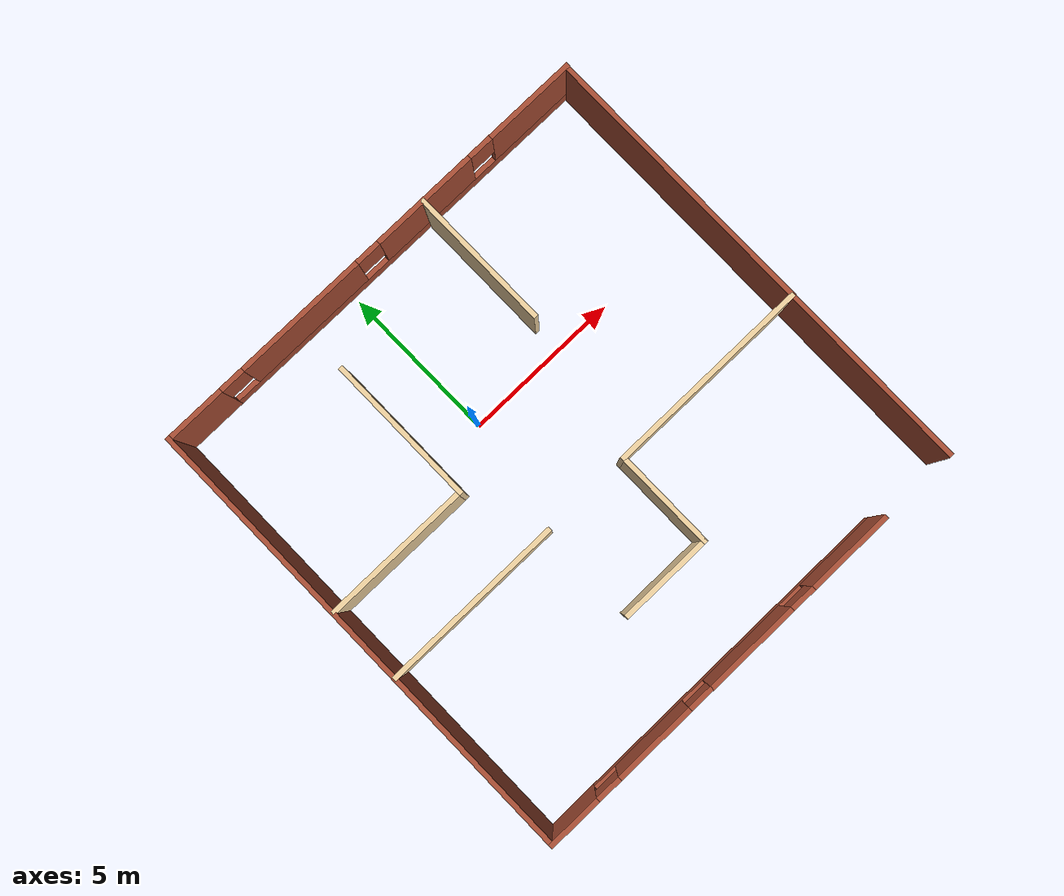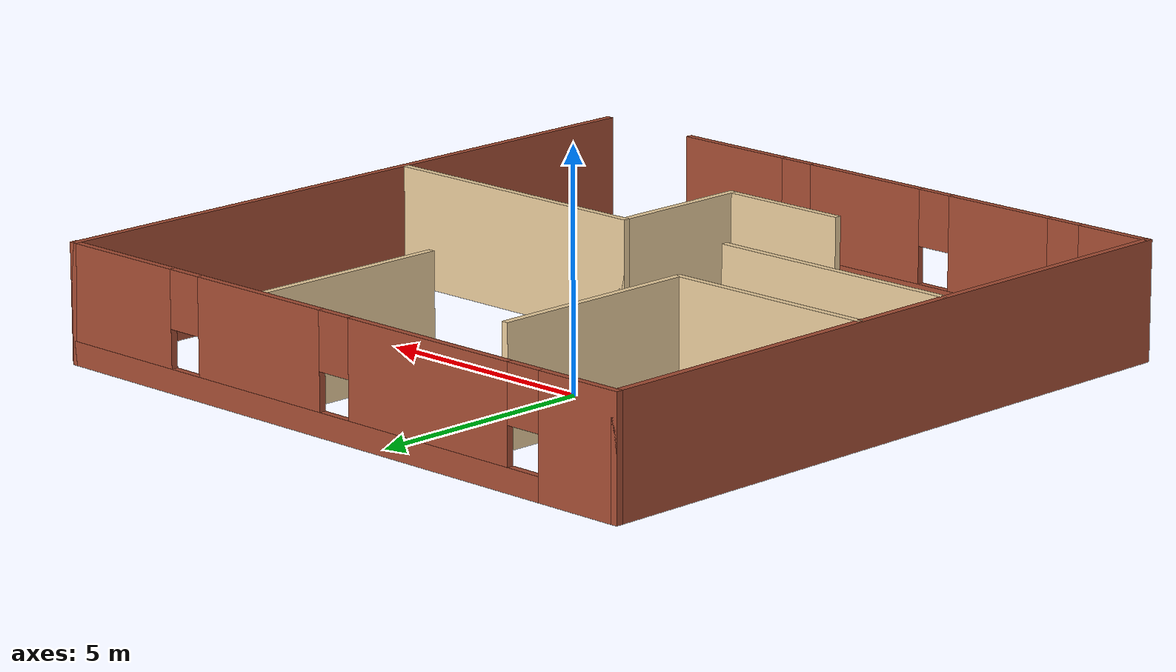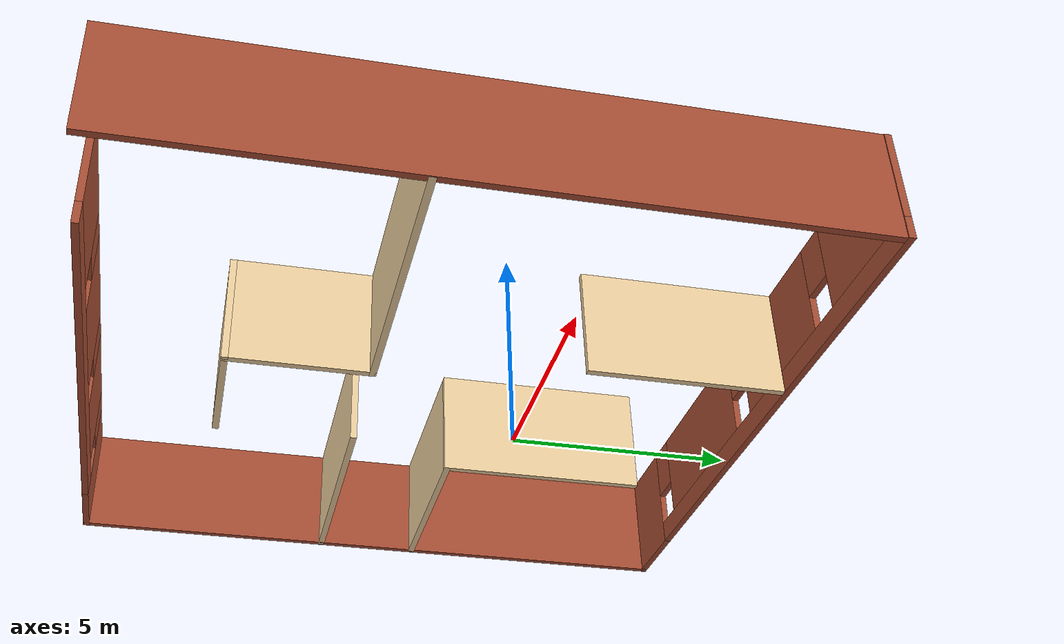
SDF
<?xml version='1.0'?>
<sdf version='1.7'>
  <model name='gMaze9'>
    <pose>1.11307 -2.1707 0 0 -0 0</pose>
    <link name='Wall_0'>
      <pose>0 7.425 0 0 -0 0</pose>
      <visual name='Wall_0_Visual_0'>
        <pose>-6.50945 0 1.25 0 -0 0</pose>
        <geometry>
          <box>
            <size>1.98109 0.15 2.5</size>
          </box>
        </geometry>
        <material>
          <script>
            <uri>file://media/materials/scripts/gazebo.material</uri>
            <name>Gazebo/Bricks</name>
          </script>
          <ambient>1 1 1 1</ambient>
        </material>
        <meta>
          <layer>0</layer>
        </meta>
      </visual>
      <collision name='Wall_0_Collision_0'>
        <geometry>
          <box>
            <size>1.98109 0.15 2.5</size>
          </box>
        </geometry>
        <pose>-6.50945 0 1.25 0 -0 0</pose>
      </collision>
      <visual name='Wall_0_Visual_1'>
        <pose>0.990545 0 0.25 0 -0 0</pose>
        <geometry>
          <box>
            <size>13.0189 0.15 0.5</size>
          </box>
        </geometry>
        <material>
          <script>
            <uri>file://media/materials/scripts/gazebo.material</uri>
            <name>Gazebo/Bricks</name>
          </script>
          <ambient>1 1 1 1</ambient>
        </material>
        <meta>
          <layer>0</layer>
        </meta>
      </visual>
      <collision name='Wall_0_Collision_1'>
        <geometry>
          <box>
            <size>13.0189 0.15 0.5</size>
          </box>
        </geometry>
        <pose>0.990545 0 0.25 0 -0 0</pose>
      </collision>
      <visual name='Wall_0_Visual_2'>
        <pose>-2.60363 0 1.5 0 -0 0</pose>
        <geometry>
          <box>
            <size>4.23056 0.15 2</size>
          </box>
        </geometry>
        <material>
          <script>
            <uri>file://media/materials/scripts/gazebo.material</uri>
            <name>Gazebo/Bricks</name>
          </script>
          <ambient>1 1 1 1</ambient>
        </material>
        <meta>
          <layer>0</layer>
        </meta>
      </visual>
      <collision name='Wall_0_Collision_2'>
        <geometry>
          <box>
            <size>4.23056 0.15 2</size>
          </box>
        </geometry>
        <pose>-2.60363 0 1.5 0 -0 0</pose>
      </collision>
      <visual name='Wall_0_Visual_3'>
        <pose>2.02238 0 1.5 0 -0 0</pose>
        <geometry>
          <box>
            <size>3.42145 0.15 2</size>
          </box>
        </geometry>
        <material>
          <script>
            <uri>file://media/materials/scripts/gazebo.material</uri>
            <name>Gazebo/Bricks</name>
          </script>
          <ambient>1 1 1 1</ambient>
        </material>
        <meta>
          <layer>0</layer>
        </meta>
      </visual>
      <collision name='Wall_0_Collision_3'>
        <geometry>
          <box>
            <size>3.42145 0.15 2</size>
          </box>
        </geometry>
        <pose>2.02238 0 1.5 0 -0 0</pose>
      </collision>
      <visual name='Wall_0_Visual_4'>
        <pose>6.01655 0 1.5 0 -0 0</pose>
        <geometry>
          <box>
            <size>2.9669 0.15 2</size>
          </box>
        </geometry>
        <material>
          <script>
            <uri>file://media/materials/scripts/gazebo.material</uri>
            <name>Gazebo/Bricks</name>
          </script>
          <ambient>1 1 1 1</ambient>
        </material>
        <meta>
          <layer>0</layer>
        </meta>
      </visual>
      <collision name='Wall_0_Collision_4'>
        <geometry>
          <box>
            <size>2.9669 0.15 2</size>
          </box>
        </geometry>
        <pose>6.01655 0 1.5 0 -0 0</pose>
      </collision>
      <visual name='Wall_0_Visual_5'>
        <pose>-5.11891 0 1.9 0 -0 0</pose>
        <geometry>
          <box>
            <size>0.8 0.15 1.2</size>
          </box>
        </geometry>
        <material>
          <script>
            <uri>file://media/materials/scripts/gazebo.material</uri>
            <name>Gazebo/Bricks</name>
          </script>
          <ambient>1 1 1 1</ambient>
        </material>
        <meta>
          <layer>0</layer>
        </meta>
      </visual>
      <collision name='Wall_0_Collision_5'>
        <geometry>
          <box>
            <size>0.8 0.15 1.2</size>
          </box>
        </geometry>
        <pose>-5.11891 0 1.9 0 -0 0</pose>
      </collision>
      <visual name='Wall_0_Visual_6'>
        <pose>-0.088347 0 1.9 0 -0 0</pose>
        <geometry>
          <box>
            <size>0.8 0.15 1.2</size>
          </box>
        </geometry>
        <material>
          <script>
            <uri>file://media/materials/scripts/gazebo.material</uri>
            <name>Gazebo/Bricks</name>
          </script>
          <ambient>1 1 1 1</ambient>
        </material>
        <meta>
          <layer>0</layer>
        </meta>
      </visual>
      <collision name='Wall_0_Collision_6'>
        <geometry>
          <box>
            <size>0.8 0.15 1.2</size>
          </box>
        </geometry>
        <pose>-0.088347 0 1.9 0 -0 0</pose>
      </collision>
      <visual name='Wall_0_Visual_7'>
        <pose>4.1331 0 1.9 0 -0 0</pose>
        <geometry>
          <box>
            <size>0.8 0.15 1.2</size>
          </box>
        </geometry>
        <material>
          <script>
            <uri>file://media/materials/scripts/gazebo.material</uri>
            <name>Gazebo/Bricks</name>
          </script>
          <ambient>1 1 1 1</ambient>
        </material>
        <meta>
          <layer>0</layer>
        </meta>
      </visual>
      <collision name='Wall_0_Collision_7'>
        <geometry>
          <box>
            <size>0.8 0.15 1.2</size>
          </box>
        </geometry>
        <pose>4.1331 0 1.9 0 -0 0</pose>
      </collision>
    </link>
    <link name='Wall_1'>
      <collision name='Wall_1_Collision'>
        <geometry>
          <box>
            <size>15 0.15 2.5</size>
          </box>
        </geometry>
        <pose>0 0 1.25 0 -0 0</pose>
      </collision>
      <visual name='Wall_1_Visual'>
        <pose>0 0 1.25 0 -0 0</pose>
        <geometry>
          <box>
            <size>15 0.15 2.5</size>
          </box>
        </geometry>
        <material>
          <script>
            <uri>file://media/materials/scripts/gazebo.material</uri>
            <name>Gazebo/Bricks</name>
          </script>
          <ambient>1 1 1 1</ambient>
        </material>
        <meta>
          <layer>0</layer>
        </meta>
      </visual>
      <pose>7.40489 -0 0 0 -0 -1.5708</pose>
    </link>
    <link name='Wall_3'>
      <collision name='Wall_3_Collision'>
        <geometry>
          <box>
            <size>15 0.15 2.5</size>
          </box>
        </geometry>
        <pose>0 0 1.25 0 -0 0</pose>
      </collision>
      <visual name='Wall_3_Visual'>
        <pose>0 0 1.25 0 -0 0</pose>
        <geometry>
          <box>
            <size>15 0.15 2.5</size>
          </box>
        </geometry>
        <material>
          <script>
            <uri>file://media/materials/scripts/gazebo.material</uri>
            <name>Gazebo/Bricks</name>
          </script>
          <ambient>1 1 1 1</ambient>
        </material>
        <meta>
          <layer>0</layer>
        </meta>
      </visual>
      <pose>-7.425 -0 0 0 -0 -1.5708</pose>
    </link>
    <link name='Wall_4'>
      <pose>-1.25 -7.425 0 0 -0 0</pose>
      <visual name='Wall_4_Visual_0'>
        <pose>-5.37558 0 1.25 0 -0 0</pose>
        <geometry>
          <box>
            <size>1.74884 0.15 2.5</size>
          </box>
        </geometry>
        <material>
          <script>
            <uri>file://media/materials/scripts/gazebo.material</uri>
            <name>Gazebo/Bricks</name>
          </script>
          <ambient>1 1 1 1</ambient>
        </material>
        <meta>
          <layer>0</layer>
        </meta>
      </visual>
      <collision name='Wall_4_Collision_0'>
        <geometry>
          <box>
            <size>1.74884 0.15 2.5</size>
          </box>
        </geometry>
        <pose>-5.37558 0 1.25 0 -0 0</pose>
      </collision>
      <visual name='Wall_4_Visual_1'>
        <pose>0.87442 0 0.25 0 -0 0</pose>
        <geometry>
          <box>
            <size>10.7512 0.15 0.5</size>
          </box>
        </geometry>
        <material>
          <script>
            <uri>file://media/materials/scripts/gazebo.material</uri>
            <name>Gazebo/Bricks</name>
          </script>
          <ambient>1 1 1 1</ambient>
        </material>
        <meta>
          <layer>0</layer>
        </meta>
      </visual>
      <collision name='Wall_4_Collision_1'>
        <geometry>
          <box>
            <size>10.7512 0.15 0.5</size>
          </box>
        </geometry>
        <pose>0.87442 0 0.25 0 -0 0</pose>
      </collision>
      <visual name='Wall_4_Visual_2'>
        <pose>-2.40199 0 1.5 0 -0 0</pose>
        <geometry>
          <box>
            <size>2.59834 0.15 2</size>
          </box>
        </geometry>
        <material>
          <script>
            <uri>file://media/materials/scripts/gazebo.material</uri>
            <name>Gazebo/Bricks</name>
          </script>
          <ambient>1 1 1 1</ambient>
        </material>
        <meta>
          <layer>0</layer>
        </meta>
      </visual>
      <collision name='Wall_4_Collision_2'>
        <geometry>
          <box>
            <size>2.59834 0.15 2</size>
          </box>
        </geometry>
        <pose>-2.40199 0 1.5 0 -0 0</pose>
      </collision>
      <visual name='Wall_4_Visual_3'>
        <pose>1.19683 0 1.5 0 -0 0</pose>
        <geometry>
          <box>
            <size>2.99931 0.15 2</size>
          </box>
        </geometry>
        <material>
          <script>
            <uri>file://media/materials/scripts/gazebo.material</uri>
            <name>Gazebo/Bricks</name>
          </script>
          <ambient>1 1 1 1</ambient>
        </material>
        <meta>
          <layer>0</layer>
        </meta>
      </visual>
      <collision name='Wall_4_Collision_3'>
        <geometry>
          <box>
            <size>2.99931 0.15 2</size>
          </box>
        </geometry>
        <pose>1.19683 0 1.5 0 -0 0</pose>
      </collision>
      <visual name='Wall_4_Visual_4'>
        <pose>4.87324 0 1.5 0 -0 0</pose>
        <geometry>
          <box>
            <size>2.75352 0.15 2</size>
          </box>
        </geometry>
        <material>
          <script>
            <uri>file://media/materials/scripts/gazebo.material</uri>
            <name>Gazebo/Bricks</name>
          </script>
          <ambient>1 1 1 1</ambient>
        </material>
        <meta>
          <layer>0</layer>
        </meta>
      </visual>
      <collision name='Wall_4_Collision_4'>
        <geometry>
          <box>
            <size>2.75352 0.15 2</size>
          </box>
        </geometry>
        <pose>4.87324 0 1.5 0 -0 0</pose>
      </collision>
      <visual name='Wall_4_Visual_5'>
        <pose>-4.10116 0 1.9 0 -0 0</pose>
        <geometry>
          <box>
            <size>0.8 0.15 1.2</size>
          </box>
        </geometry>
        <material>
          <script>
            <uri>file://media/materials/scripts/gazebo.material</uri>
            <name>Gazebo/Bricks</name>
          </script>
          <ambient>1 1 1 1</ambient>
        </material>
        <meta>
          <layer>0</layer>
        </meta>
      </visual>
      <collision name='Wall_4_Collision_5'>
        <geometry>
          <box>
            <size>0.8 0.15 1.2</size>
          </box>
        </geometry>
        <pose>-4.10116 0 1.9 0 -0 0</pose>
      </collision>
      <visual name='Wall_4_Visual_6'>
        <pose>-0.702821 0 1.9 0 -0 0</pose>
        <geometry>
          <box>
            <size>0.8 0.15 1.2</size>
          </box>
        </geometry>
        <material>
          <script>
            <uri>file://media/materials/scripts/gazebo.material</uri>
            <name>Gazebo/Bricks</name>
          </script>
          <ambient>1 1 1 1</ambient>
        </material>
        <meta>
          <layer>0</layer>
        </meta>
      </visual>
      <collision name='Wall_4_Collision_6'>
        <geometry>
          <box>
            <size>0.8 0.15 1.2</size>
          </box>
        </geometry>
        <pose>-0.702821 0 1.9 0 -0 0</pose>
      </collision>
      <visual name='Wall_4_Visual_7'>
        <pose>3.09648 0 1.9 0 -0 0</pose>
        <geometry>
          <box>
            <size>0.8 0.15 1.2</size>
          </box>
        </geometry>
        <material>
          <script>
            <uri>file://media/materials/scripts/gazebo.material</uri>
            <name>Gazebo/Bricks</name>
          </script>
          <ambient>1 1 1 1</ambient>
        </material>
        <meta>
          <layer>0</layer>
        </meta>
      </visual>
      <collision name='Wall_4_Collision_7'>
        <geometry>
          <box>
            <size>0.8 0.15 1.2</size>
          </box>
        </geometry>
        <pose>3.09648 0 1.9 0 -0 0</pose>
      </collision>
    </link>
    <link name='Wall_64'>
      <collision name='Wall_64_Collision'>
        <geometry>
          <box>
            <size>4.75 0.15 2.5</size>
          </box>
        </geometry>
        <pose>0 0 1.25 0 -0 0</pose>
      </collision>
      <visual name='Wall_64_Visual'>
        <pose>0 0 1.25 0 -0 0</pose>
        <geometry>
          <box>
            <size>4.75 0.15 2.5</size>
          </box>
        </geometry>
        <material>
          <script>
            <uri>file://media/materials/scripts/gazebo.material</uri>
            <name>Gazebo/Grey</name>
          </script>
          <ambient>0.921569 0.807843 0.615686 1</ambient>
        </material>
        <meta>
          <layer>0</layer>
        </meta>
      </visual>
      <pose>-5.07035 0.974344 0 0 -0 0</pose>
    </link>
    <link name='Wall_65'>
      <collision name='Wall_65_Collision'>
        <geometry>
          <box>
            <size>4.75 0.15 2.5</size>
          </box>
        </geometry>
        <pose>0 0 1.25 0 -0 0</pose>
      </collision>
      <visual name='Wall_65_Visual'>
        <pose>0 0 1.25 0 -0 0</pose>
        <geometry>
          <box>
            <size>4.75 0.15 2.5</size>
          </box>
        </geometry>
        <material>
          <script>
            <uri>file://media/materials/scripts/gazebo.material</uri>
            <name>Gazebo/Grey</name>
          </script>
          <ambient>0.921569 0.807843 0.615686 1</ambient>
        </material>
        <meta>
          <layer>0</layer>
        </meta>
      </visual>
      <pose>-2.77035 3.27434 0 0 -0 1.5708</pose>
    </link>
    <link name='Wall_69'>
      <collision name='Wall_69_Collision'>
        <geometry>
          <box>
            <size>4.5 0.15 2.5</size>
          </box>
        </geometry>
        <pose>0 0 1.25 0 -0 0</pose>
      </collision>
      <visual name='Wall_69_Visual'>
        <pose>0 0 1.25 0 -0 0</pose>
        <geometry>
          <box>
            <size>4.5 0.15 2.5</size>
          </box>
        </geometry>
        <material>
          <script>
            <uri>file://media/materials/scripts/gazebo.material</uri>
            <name>Gazebo/Grey</name>
          </script>
          <ambient>0.921569 0.807843 0.615686 1</ambient>
        </material>
        <meta>
          <layer>0</layer>
        </meta>
      </visual>
      <pose>1.9872 5.22489 0 0 -0 1.5708</pose>
    </link>
    <link name='Wall_77'>
      <collision name='Wall_77_Collision'>
        <geometry>
          <box>
            <size>5.75 0.15 2.5</size>
          </box>
        </geometry>
        <pose>0 0 1.25 0 -0 0</pose>
      </collision>
      <visual name='Wall_77_Visual'>
        <pose>0 0 1.25 0 -0 0</pose>
        <geometry>
          <box>
            <size>5.75 0.15 2.5</size>
          </box>
        </geometry>
        <material>
          <script>
            <uri>file://media/materials/scripts/gazebo.material</uri>
            <name>Gazebo/Grey</name>
          </script>
          <ambient>0.921569 0.807843 0.615686 1</ambient>
        </material>
        <meta>
          <layer>0</layer>
        </meta>
      </visual>
      <pose>-4.58201 -1.41273 0 0 -0 0</pose>
    </link>
    <link name='Wall_79'>
      <collision name='Wall_79_Collision'>
        <geometry>
          <box>
            <size>6.5 0.15 2.5</size>
          </box>
        </geometry>
        <pose>0 0 1.25 0 -0 0</pose>
      </collision>
      <visual name='Wall_79_Visual'>
        <pose>0 0 1.25 0 -0 0</pose>
        <geometry>
          <box>
            <size>6.5 0.15 2.5</size>
          </box>
        </geometry>
        <material>
          <script>
            <uri>file://media/materials/scripts/gazebo.material</uri>
            <name>Gazebo/Grey</name>
          </script>
          <ambient>0.921569 0.807843 0.615686 1</ambient>
        </material>
        <meta>
          <layer>0</layer>
        </meta>
      </visual>
      <pose>4.2053 -1.41273 0 0 -0 0</pose>
    </link>
    <link name='Wall_81'>
      <collision name='Wall_81_Collision'>
        <geometry>
          <box>
            <size>3.25 0.15 2.5</size>
          </box>
        </geometry>
        <pose>0 0 1.25 0 -0 0</pose>
      </collision>
      <visual name='Wall_81_Visual'>
        <pose>0 0 1.25 0 -0 0</pose>
        <geometry>
          <box>
            <size>3.25 0.15 2.5</size>
          </box>
        </geometry>
        <material>
          <script>
            <uri>file://media/materials/scripts/gazebo.material</uri>
            <name>Gazebo/Grey</name>
          </script>
          <ambient>0.921569 0.807843 0.615686 1</ambient>
        </material>
        <meta>
          <layer>0</layer>
        </meta>
      </visual>
      <pose>1.0303 -2.96273 0 0 -0 -1.5708</pose>
    </link>
    <link name='Wall_82'>
      <collision name='Wall_82_Collision'>
        <geometry>
          <box>
            <size>3 0.15 2.5</size>
          </box>
        </geometry>
        <pose>0 0 1.25 0 -0 0</pose>
      </collision>
      <visual name='Wall_82_Visual'>
        <pose>0 0 1.25 0 -0 0</pose>
        <geometry>
          <box>
            <size>3 0.15 2.5</size>
          </box>
        </geometry>
        <material>
          <script>
            <uri>file://media/materials/scripts/gazebo.material</uri>
            <name>Gazebo/Grey</name>
          </script>
          <ambient>0.921569 0.807843 0.615686 1</ambient>
        </material>
        <meta>
          <layer>0</layer>
        </meta>
      </visual>
      <pose>-0.394701 -4.51273 0 0 -0 3.14159</pose>
    </link>
    <static>1</static>
  </model>
</sdf>
